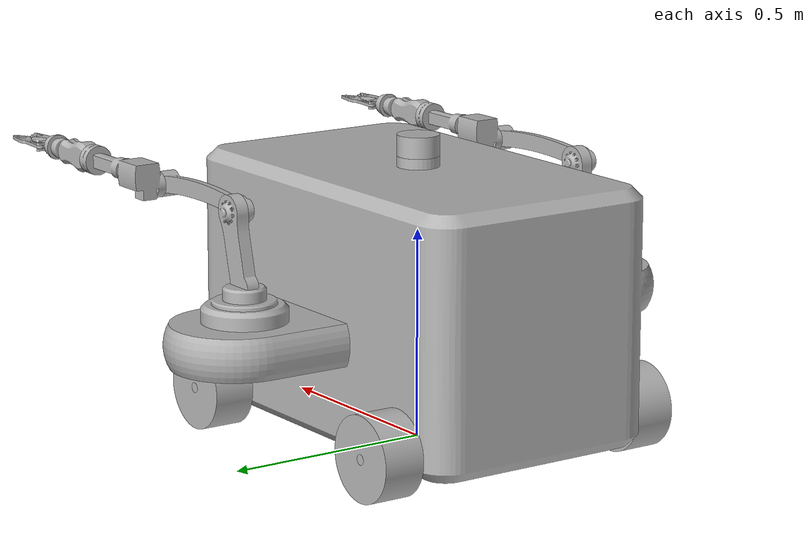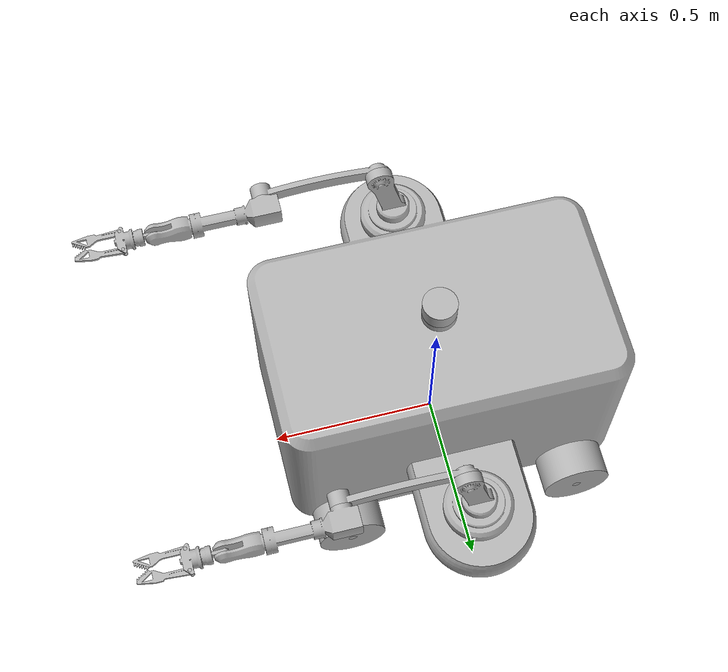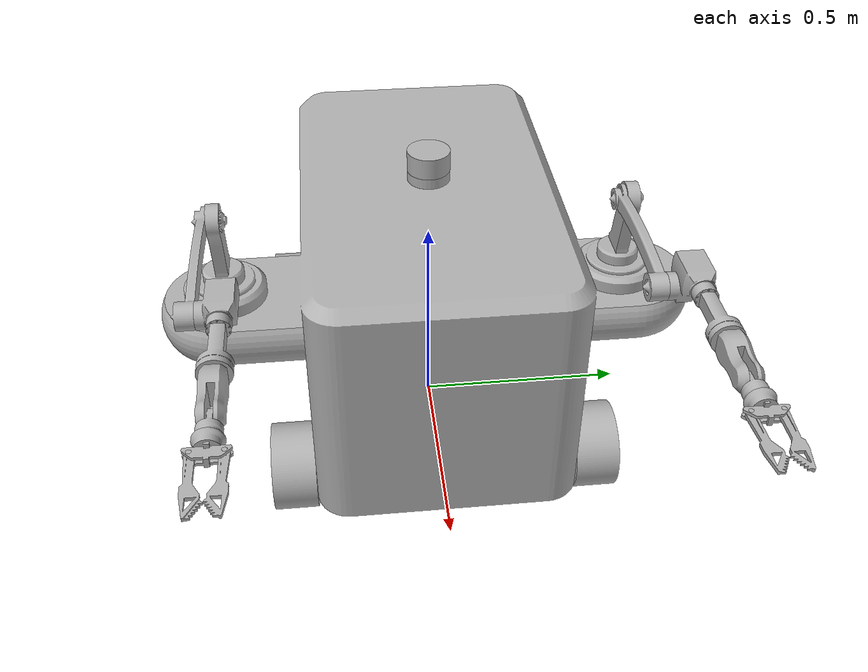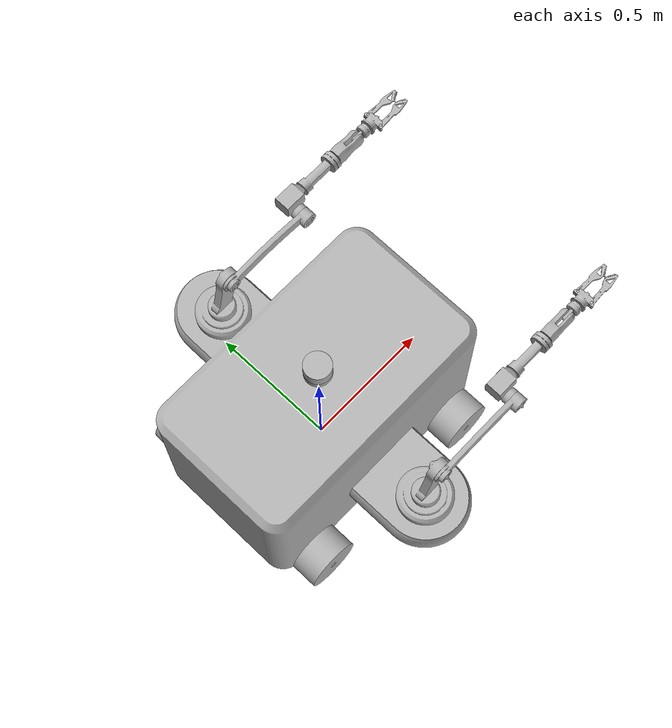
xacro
<?xml version="1.0" ?>
<robot name="mobile_manipulator" xmlns:xacro="http://www.ros.org/wiki/xacro">

<xacro:include filename="$(find mobile_manipulator_description)/urdf/materials.xacro" />
<xacro:include filename="$(find mobile_manipulator_description)/urdf/mobile_manipulator.trans" />
<xacro:include filename="$(find mobile_manipulator_description)/gazebo/mobile_manipulator_materials.gazebo" />
<xacro:include filename="$(find mobile_manipulator_description)/gazebo/mobile_manipulator_physics.gazebo" />
<xacro:include filename="$(find mobile_manipulator_description)/gazebo/mobile_manipulator_plugins.gazebo" />
<link name="dummy">
</link>
<link name="base_link">
  <inertial>
    <origin rpy="0 0 0" xyz="1.1880172534914988e-15 1.8117263115745358e-14 0.3472850110892992"/>
    <mass value="398.8636735465949"/>
    <inertia ixx="27.323391" ixy="-0.0" ixz="0.0" iyy="42.291122" iyz="0.0" izz="47.037275"/>
  </inertial>
  <visual>
    <origin rpy="0 0 0" xyz="0 0 0"/>
    <geometry>
      <mesh filename="package://mobile_manipulator_description/meshes/base_link.stl" scale="0.001 0.001 0.001"/>
    </geometry>
    <material name="silver_default"/>
  </visual>
  <collision>
    <origin rpy="0 0 0" xyz="0 0 0"/>
    <geometry>
      <mesh filename="package://mobile_manipulator_description/meshes/base_link.stl" scale="0.001 0.001 0.001"/>
    </geometry>
  </collision>
</link>

<link name="wheel_fl_1">
  <inertial>
    <origin rpy="0 0 0" xyz="-2.070565940925917e-14 0.0 1.9886869928598117e-14"/>
    <mass value="2.8760298995910287"/>
    <inertia ixx="0.009699" ixy="-0.0" ixz="0.0" iyy="0.014605" iyz="-0.0" izz="0.009699"/>
  </inertial>
  <visual>
    <origin rpy="0 0 0" xyz="-0.35 -0.35 -0.1"/>
    <geometry>
      <mesh filename="package://mobile_manipulator_description/meshes/wheel_fl_1.stl" scale="0.001 0.001 0.001"/>
    </geometry>
    <material name="silver_default"/>
  </visual>
  <collision>
    <origin rpy="0 0 0" xyz="-0.35 -0.35 -0.1"/>
    <geometry>
      <mesh filename="package://mobile_manipulator_description/meshes/wheel_fl_1.stl" scale="0.001 0.001 0.001"/>
    </geometry>
  </collision>
</link>

<link name="wheel_fr_1">
  <inertial>
    <origin rpy="0 0 0" xyz="-2.070565940925917e-14 1.6653345369377348e-15 1.990074771640593e-14"/>
    <mass value="2.8760298995910287"/>
    <inertia ixx="0.009699" ixy="-0.0" ixz="0.0" iyy="0.014605" iyz="-0.0" izz="0.009699"/>
  </inertial>
  <visual>
    <origin rpy="0 0 0" xyz="-0.35 0.35 -0.1"/>
    <geometry>
      <mesh filename="package://mobile_manipulator_description/meshes/wheel_fr_1.stl" scale="0.001 0.001 0.001"/>
    </geometry>
    <material name="silver_default"/>
  </visual>
  <collision>
    <origin rpy="0 0 0" xyz="-0.35 0.35 -0.1"/>
    <geometry>
      <mesh filename="package://mobile_manipulator_description/meshes/wheel_fr_1.stl" scale="0.001 0.001 0.001"/>
    </geometry>
  </collision>
</link>

<link name="wheel_br_1">
  <inertial>
    <origin rpy="0 0 0" xyz="-2.0761170560490427e-14 1.6653345369377348e-15 1.9886869928598117e-14"/>
    <mass value="2.8760298995910287"/>
    <inertia ixx="0.009699" ixy="0.0" ixz="-0.0" iyy="0.014605" iyz="-0.0" izz="0.009699"/>
  </inertial>
  <visual>
    <origin rpy="0 0 0" xyz="0.35 0.35 -0.1"/>
    <geometry>
      <mesh filename="package://mobile_manipulator_description/meshes/wheel_br_1.stl" scale="0.001 0.001 0.001"/>
    </geometry>
    <material name="silver_default"/>
  </visual>
  <collision>
    <origin rpy="0 0 0" xyz="0.35 0.35 -0.1"/>
    <geometry>
      <mesh filename="package://mobile_manipulator_description/meshes/wheel_br_1.stl" scale="0.001 0.001 0.001"/>
    </geometry>
  </collision>
</link>

<link name="lidar_1">
  <inertial>
    <origin rpy="0 0 0" xyz="5.790023100122031e-18 2.2101892748399837e-14 0.02499999999999991"/>
    <mass value="3.082687791334983"/>
    <inertia ixx="0.002569" ixy="-0.0" ixz="0.0" iyy="0.002569" iyz="0.0" izz="0.003853"/>
  </inertial>
  <visual>
    <origin rpy="0 0 0" xyz="-0.0 -0.0 -0.675"/>
    <geometry>
      <mesh filename="package://mobile_manipulator_description/meshes/lidar_1.stl" scale="0.001 0.001 0.001"/>
    </geometry>
    <material name="silver_default"/>
  </visual>
  <collision>
    <origin rpy="0 0 0" xyz="-0.0 -0.0 -0.675"/>
    <geometry>
      <mesh filename="package://mobile_manipulator_description/meshes/lidar_1.stl" scale="0.001 0.001 0.001"/>
    </geometry>
  </collision>
</link>

<link name="arm_base_right_1">
  <inertial>
    <origin rpy="0 0 0" xyz="-1.1685831912934098e-14 0.0 0.0228217856471592"/>
    <mass value="3.7908869701372376"/>
    <inertia ixx="0.009461" ixy="0.0" ixz="0.0" iyy="0.009461" iyz="0.0" izz="0.017508"/>
  </inertial>
  <visual>
    <origin rpy="0 0 0" xyz="-0.0 0.5 -0.35"/>
    <geometry>
      <mesh filename="package://mobile_manipulator_description/meshes/arm_base_right_1.stl" scale="0.001 0.001 0.001"/>
    </geometry>
    <material name="silver_default"/>
  </visual>
  <collision>
    <origin rpy="0 0 0" xyz="-0.0 0.5 -0.35"/>
    <geometry>
      <mesh filename="package://mobile_manipulator_description/meshes/arm_base_right_1.stl" scale="0.001 0.001 0.001"/>
    </geometry>
  </collision>
</link>

<link name="arm_base_left_1">
  <inertial>
    <origin rpy="0 0 0" xyz="-1.1682031322150814e-14 -7.771561172376096e-16 0.022821785647177406"/>
    <mass value="3.7908869701372376"/>
    <inertia ixx="0.009461" ixy="0.0" ixz="0.0" iyy="0.009461" iyz="-0.0" izz="0.017508"/>
  </inertial>
  <visual>
    <origin rpy="0 0 0" xyz="0.0 -0.475 -0.35"/>
    <geometry>
      <mesh filename="package://mobile_manipulator_description/meshes/arm_base_left_1.stl" scale="0.001 0.001 0.001"/>
    </geometry>
    <material name="silver_default"/>
  </visual>
  <collision>
    <origin rpy="0 0 0" xyz="0.0 -0.475 -0.35"/>
    <geometry>
      <mesh filename="package://mobile_manipulator_description/meshes/arm_base_left_1.stl" scale="0.001 0.001 0.001"/>
    </geometry>
  </collision>
</link>

<link name="shoulder_right_1">
  <inertial>
    <origin rpy="0 0 0" xyz="0.009876831808453819 0.00024257366111479772 0.05892555620869172"/>
    <mass value="3.1247497467720398"/>
    <inertia ixx="0.014842" ixy="-2.6e-05" ixz="-0.003268" iyy="0.016057" iyz="-0.000102" izz="0.003681"/>
  </inertial>
  <visual>
    <origin rpy="0 0 0" xyz="-0.0 0.5 -0.4"/>
    <geometry>
      <mesh filename="package://mobile_manipulator_description/meshes/shoulder_right_1.stl" scale="0.001 0.001 0.001"/>
    </geometry>
    <material name="silver_default"/>
  </visual>
  <collision>
    <origin rpy="0 0 0" xyz="-0.0 0.5 -0.4"/>
    <geometry>
      <mesh filename="package://mobile_manipulator_description/meshes/shoulder_right_1.stl" scale="0.001 0.001 0.001"/>
    </geometry>
  </collision>
</link>

<link name="shoulder_left_1">
  <inertial>
    <origin rpy="0 0 0" xyz="0.009876831808453845 0.00024257366111080092 0.05892555620870993"/>
    <mass value="3.12474974677204"/>
    <inertia ixx="0.014842" ixy="-2.6e-05" ixz="-0.003268" iyy="0.016057" iyz="-0.000102" izz="0.003681"/>
  </inertial>
  <visual>
    <origin rpy="0 0 0" xyz="-0.0 -0.475 -0.4"/>
    <geometry>
      <mesh filename="package://mobile_manipulator_description/meshes/shoulder_left_1.stl" scale="0.001 0.001 0.001"/>
    </geometry>
    <material name="silver_default"/>
  </visual>
  <collision>
    <origin rpy="0 0 0" xyz="-0.0 -0.475 -0.4"/>
    <geometry>
      <mesh filename="package://mobile_manipulator_description/meshes/shoulder_left_1.stl" scale="0.001 0.001 0.001"/>
    </geometry>
  </collision>
</link>

<link name="wheel_bl_1">
  <inertial>
    <origin rpy="0 0 0" xyz="-2.0761170560490427e-14 0.0 1.9886869928598117e-14"/>
    <mass value="2.8760298995910287"/>
    <inertia ixx="0.009699" ixy="0.0" ixz="-0.0" iyy="0.014605" iyz="-0.0" izz="0.009699"/>
  </inertial>
  <visual>
    <origin rpy="0 0 0" xyz="0.35 -0.35 -0.1"/>
    <geometry>
      <mesh filename="package://mobile_manipulator_description/meshes/wheel_bl_1.stl" scale="0.001 0.001 0.001"/>
    </geometry>
    <material name="silver_default"/>
  </visual>
  <collision>
    <origin rpy="0 0 0" xyz="0.35 -0.35 -0.1"/>
    <geometry>
      <mesh filename="package://mobile_manipulator_description/meshes/wheel_bl_1.stl" scale="0.001 0.001 0.001"/>
    </geometry>
  </collision>
</link>

<link name="arm_right_1">
  <inertial>
    <origin rpy="0 0 0" xyz="0.19413326329620814 -0.012606374294724554 0.005895047633385331"/>
    <mass value="1.1196019663077494"/>
    <inertia ixx="0.00032" ixy="0.000436" ixz="0.000122" iyy="0.019542" iyz="-1.8e-05" izz="0.019409"/>
  </inertial>
  <visual>
    <origin rpy="0 0 0" xyz="-0.04388 0.515 -0.593021"/>
    <geometry>
      <mesh filename="package://mobile_manipulator_description/meshes/arm_right_1.stl" scale="0.001 0.001 0.001"/>
    </geometry>
    <material name="silver_default"/>
  </visual>
  <collision>
    <origin rpy="0 0 0" xyz="-0.04388 0.515 -0.593021"/>
    <geometry>
      <mesh filename="package://mobile_manipulator_description/meshes/arm_right_1.stl" scale="0.001 0.001 0.001"/>
    </geometry>
  </collision>
</link>

<link name="arm_left_1">
  <inertial>
    <origin rpy="0 0 0" xyz="0.19413326329620828 -0.012606374294733103 0.005895047633403427"/>
    <mass value="1.1196019663077494"/>
    <inertia ixx="0.00032" ixy="0.000436" ixz="0.000122" iyy="0.019542" iyz="-1.8e-05" izz="0.019409"/>
  </inertial>
  <visual>
    <origin rpy="0 0 0" xyz="-0.04388 -0.46 -0.593021"/>
    <geometry>
      <mesh filename="package://mobile_manipulator_description/meshes/arm_left_1.stl" scale="0.001 0.001 0.001"/>
    </geometry>
    <material name="silver_default"/>
  </visual>
  <collision>
    <origin rpy="0 0 0" xyz="-0.04388 -0.46 -0.593021"/>
    <geometry>
      <mesh filename="package://mobile_manipulator_description/meshes/arm_left_1.stl" scale="0.001 0.001 0.001"/>
    </geometry>
  </collision>
</link>

<link name="forearm_right_1">
  <inertial>
    <origin rpy="0 0 0" xyz="0.06010304679536271 0.0504534714766981 0.02502167030649416"/>
    <mass value="1.9557341461233821"/>
    <inertia ixx="0.001552" ixy="-0.000534" ixz="-0.000582" iyy="0.013654" iyz="-0.00025" izz="0.013657"/>
  </inertial>
  <visual>
    <origin rpy="0 0 0" xyz="-0.39388 0.515 -0.593021"/>
    <geometry>
      <mesh filename="package://mobile_manipulator_description/meshes/forearm_right_1.stl" scale="0.001 0.001 0.001"/>
    </geometry>
    <material name="silver_default"/>
  </visual>
  <collision>
    <origin rpy="0 0 0" xyz="-0.39388 0.515 -0.593021"/>
    <geometry>
      <mesh filename="package://mobile_manipulator_description/meshes/forearm_right_1.stl" scale="0.001 0.001 0.001"/>
    </geometry>
  </collision>
</link>

<link name="forearm_left_1">
  <inertial>
    <origin rpy="0 0 0" xyz="0.060103046795362824 0.05045347147668883 0.025021670306512256"/>
    <mass value="1.9557341461233821"/>
    <inertia ixx="0.001552" ixy="-0.000534" ixz="-0.000582" iyy="0.013654" iyz="-0.00025" izz="0.013657"/>
  </inertial>
  <visual>
    <origin rpy="0 0 0" xyz="-0.39388 -0.46 -0.593021"/>
    <geometry>
      <mesh filename="package://mobile_manipulator_description/meshes/forearm_left_1.stl" scale="0.001 0.001 0.001"/>
    </geometry>
    <material name="silver_default"/>
  </visual>
  <collision>
    <origin rpy="0 0 0" xyz="-0.39388 -0.46 -0.593021"/>
    <geometry>
      <mesh filename="package://mobile_manipulator_description/meshes/forearm_left_1.stl" scale="0.001 0.001 0.001"/>
    </geometry>
  </collision>
</link>

<link name="wrist_right_1">
  <inertial>
    <origin rpy="0 0 0" xyz="0.054203077066210414 2.7755575615628914e-16 3.7502179894843835e-07"/>
    <mass value="0.7930209099256357"/>
    <inertia ixx="0.000384" ixy="-0.0" ixz="-0.0" iyy="0.001295" iyz="-0.0" izz="0.001254"/>
  </inertial>
  <visual>
    <origin rpy="0 0 0" xyz="-0.61488 0.46 -0.623021"/>
    <geometry>
      <mesh filename="package://mobile_manipulator_description/meshes/wrist_right_1.stl" scale="0.001 0.001 0.001"/>
    </geometry>
    <material name="silver_default"/>
  </visual>
  <collision>
    <origin rpy="0 0 0" xyz="-0.61488 0.46 -0.623021"/>
    <geometry>
      <mesh filename="package://mobile_manipulator_description/meshes/wrist_right_1.stl" scale="0.001 0.001 0.001"/>
    </geometry>
  </collision>
</link>

<link name="wrist_left_1">
  <inertial>
    <origin rpy="0 0 0" xyz="0.054203077066210636 -9.103828801926284e-15 3.7502181804427437e-07"/>
    <mass value="0.7930209099256357"/>
    <inertia ixx="0.000384" ixy="-0.0" ixz="0.0" iyy="0.001295" iyz="0.0" izz="0.001254"/>
  </inertial>
  <visual>
    <origin rpy="0 0 0" xyz="-0.61488 -0.515 -0.623021"/>
    <geometry>
      <mesh filename="package://mobile_manipulator_description/meshes/wrist_left_1.stl" scale="0.001 0.001 0.001"/>
    </geometry>
    <material name="silver_default"/>
  </visual>
  <collision>
    <origin rpy="0 0 0" xyz="-0.61488 -0.515 -0.623021"/>
    <geometry>
      <mesh filename="package://mobile_manipulator_description/meshes/wrist_left_1.stl" scale="0.001 0.001 0.001"/>
    </geometry>
  </collision>
</link>

<link name="palm_right_1">
  <inertial>
    <origin rpy="0 0 0" xyz="0.04219292467141289 6.977751709769109e-14 3.7502179894843835e-07"/>
    <mass value="0.1617998720819448"/>
    <inertia ixx="3.8e-05" ixy="-0.0" ixz="-0.0" iyy="6.4e-05" iyz="0.0" izz="6.4e-05"/>
  </inertial>
  <visual>
    <origin rpy="0 0 0" xyz="-0.71988 0.46 -0.623021"/>
    <geometry>
      <mesh filename="package://mobile_manipulator_description/meshes/palm_right_1.stl" scale="0.001 0.001 0.001"/>
    </geometry>
    <material name="silver_default"/>
  </visual>
  <collision>
    <origin rpy="0 0 0" xyz="-0.71988 0.46 -0.623021"/>
    <geometry>
      <mesh filename="package://mobile_manipulator_description/meshes/palm_right_1.stl" scale="0.001 0.001 0.001"/>
    </geometry>
  </collision>
</link>

<link name="palm_left_1">
  <inertial>
    <origin rpy="0 0 0" xyz="0.042192924671413 6.039613253960852e-14 3.7502181715609595e-07"/>
    <mass value="0.1617998720819448"/>
    <inertia ixx="3.8e-05" ixy="-0.0" ixz="0.0" iyy="6.4e-05" iyz="0.0" izz="6.4e-05"/>
  </inertial>
  <visual>
    <origin rpy="0 0 0" xyz="-0.71988 -0.515 -0.623021"/>
    <geometry>
      <mesh filename="package://mobile_manipulator_description/meshes/palm_left_1.stl" scale="0.001 0.001 0.001"/>
    </geometry>
    <material name="silver_default"/>
  </visual>
  <collision>
    <origin rpy="0 0 0" xyz="-0.71988 -0.515 -0.623021"/>
    <geometry>
      <mesh filename="package://mobile_manipulator_description/meshes/palm_left_1.stl" scale="0.001 0.001 0.001"/>
    </geometry>
  </collision>
</link>

<link name="knuckle_right_1">
  <inertial>
    <origin rpy="0 0 0" xyz="0.014791665047523606 2.8555338740798852e-06 3.7502179894843835e-07"/>
    <mass value="0.49387627632174347"/>
    <inertia ixx="0.000186" ixy="-0.0" ixz="-0.0" iyy="0.000145" iyz="0.0" izz="0.000163"/>
  </inertial>
  <visual>
    <origin rpy="0 0 0" xyz="-0.78388 0.46 -0.623021"/>
    <geometry>
      <mesh filename="package://mobile_manipulator_description/meshes/knuckle_right_1.stl" scale="0.001 0.001 0.001"/>
    </geometry>
    <material name="silver_default"/>
  </visual>
  <collision>
    <origin rpy="0 0 0" xyz="-0.78388 0.46 -0.623021"/>
    <geometry>
      <mesh filename="package://mobile_manipulator_description/meshes/knuckle_right_1.stl" scale="0.001 0.001 0.001"/>
    </geometry>
  </collision>
</link>

<link name="knuckle_left_1">
  <inertial>
    <origin rpy="0 0 0" xyz="0.02516547946758041 1.3028412048865512e-05 3.7502181726711825e-07"/>
    <mass value="0.31471677202513093"/>
    <inertia ixx="0.000131" ixy="-0.0" ixz="0.0" iyy="0.000106" iyz="0.0" izz="0.000164"/>
  </inertial>
  <visual>
    <origin rpy="0 0 0" xyz="-0.78388 -0.515 -0.623021"/>
    <geometry>
      <mesh filename="package://mobile_manipulator_description/meshes/knuckle_left_1.stl" scale="0.001 0.001 0.001"/>
    </geometry>
    <material name="silver_default"/>
  </visual>
  <collision>
    <origin rpy="0 0 0" xyz="-0.78388 -0.515 -0.623021"/>
    <geometry>
      <mesh filename="package://mobile_manipulator_description/meshes/knuckle_left_1.stl" scale="0.001 0.001 0.001"/>
    </geometry>
  </collision>
</link>

<link name="finger_right_1_1">
  <inertial>
    <origin rpy="0 0 0" xyz="0.0667816014736462 0.003796343581673578 -7.734064779374439e-05"/>
    <mass value="0.058672001092002074"/>
    <inertia ixx="4e-06" ixy="-6e-06" ixz="0.0" iyy="0.000102" iyz="0.0" izz="0.000105"/>
  </inertial>
  <visual>
    <origin rpy="0 0 0" xyz="-0.81888 0.49 -0.623021"/>
    <geometry>
      <mesh filename="package://mobile_manipulator_description/meshes/finger_right_1_1.stl" scale="0.001 0.001 0.001"/>
    </geometry>
    <material name="silver_default"/>
  </visual>
  <collision>
    <origin rpy="0 0 0" xyz="-0.81888 0.49 -0.623021"/>
    <geometry>
      <mesh filename="package://mobile_manipulator_description/meshes/finger_right_1_1.stl" scale="0.001 0.001 0.001"/>
    </geometry>
  </collision>
</link>

<link name="finger_right_2_1">
  <inertial>
    <origin rpy="0 0 0" xyz="0.0667816014736462 -0.0037963435816733004 7.809069139164126e-05"/>
    <mass value="0.058672001092002074"/>
    <inertia ixx="4e-06" ixy="6e-06" ixz="-0.0" iyy="0.000102" iyz="0.0" izz="0.000105"/>
  </inertial>
  <visual>
    <origin rpy="0 0 0" xyz="-0.81888 0.43 -0.623021"/>
    <geometry>
      <mesh filename="package://mobile_manipulator_description/meshes/finger_right_2_1.stl" scale="0.001 0.001 0.001"/>
    </geometry>
    <material name="silver_default"/>
  </visual>
  <collision>
    <origin rpy="0 0 0" xyz="-0.81888 0.43 -0.623021"/>
    <geometry>
      <mesh filename="package://mobile_manipulator_description/meshes/finger_right_2_1.stl" scale="0.001 0.001 0.001"/>
    </geometry>
  </collision>
</link>

<link name="finger_left_1_1">
  <inertial>
    <origin rpy="0 0 0" xyz="0.06678160147364653 -0.003796343581682571 7.80906914097379e-05"/>
    <mass value="0.058672001092002074"/>
    <inertia ixx="4e-06" ixy="6e-06" ixz="-0.0" iyy="0.000102" iyz="0.0" izz="0.000105"/>
  </inertial>
  <visual>
    <origin rpy="0 0 0" xyz="-0.81888 -0.545 -0.623021"/>
    <geometry>
      <mesh filename="package://mobile_manipulator_description/meshes/finger_left_1_1.stl" scale="0.001 0.001 0.001"/>
    </geometry>
    <material name="silver_default"/>
  </visual>
  <collision>
    <origin rpy="0 0 0" xyz="-0.81888 -0.545 -0.623021"/>
    <geometry>
      <mesh filename="package://mobile_manipulator_description/meshes/finger_left_1_1.stl" scale="0.001 0.001 0.001"/>
    </geometry>
  </collision>
</link>

<link name="finger_left_2_1">
  <inertial>
    <origin rpy="0 0 0" xyz="0.06678160147364653 0.003796343581664363 -7.734064777542571e-05"/>
    <mass value="0.058672001092002074"/>
    <inertia ixx="4e-06" ixy="-6e-06" ixz="0.0" iyy="0.000102" iyz="0.0" izz="0.000105"/>
  </inertial>
  <visual>
    <origin rpy="0 0 0" xyz="-0.81888 -0.485 -0.623021"/>
    <geometry>
      <mesh filename="package://mobile_manipulator_description/meshes/finger_left_2_1.stl" scale="0.001 0.001 0.001"/>
    </geometry>
    <material name="silver_default"/>
  </visual>
  <collision>
    <origin rpy="0 0 0" xyz="-0.81888 -0.485 -0.623021"/>
    <geometry>
      <mesh filename="package://mobile_manipulator_description/meshes/finger_left_2_1.stl" scale="0.001 0.001 0.001"/>
    </geometry>
  </collision>
</link>

<joint name="dummy_joint" type="fixed">
  <parent link="dummy"/>
  <child link="base_link"/>
</joint>

<joint name="motor_fl" type="continuous">
  <origin rpy="0 0 0" xyz="0.35 0.35 0.1"/>
  <parent link="base_link"/>
  <child link="wheel_fl_1"/>
  <axis xyz="0.0 1.0 -0.0"/>
</joint>

<joint name="motor_fr" type="continuous">
  <origin rpy="0 0 0" xyz="0.35 -0.35 0.1"/>
  <parent link="base_link"/>
  <child link="wheel_fr_1"/>
  <axis xyz="0.0 1.0 -0.0"/>
</joint>

<joint name="motor_br" type="continuous">
  <origin rpy="0 0 0" xyz="-0.35 -0.35 0.1"/>
  <parent link="base_link"/>
  <child link="wheel_br_1"/>
  <axis xyz="0.0 1.0 -0.0"/>
</joint>

<joint name="lidar_joint" type="fixed">
  <origin rpy="0 0 0" xyz="0.0 0.0 0.675"/>
  <parent link="base_link"/>
  <child link="lidar_1"/>
</joint>

<joint name="arm_base_right_joint" type="fixed">
  <origin rpy="0 0 0" xyz="0.0 -0.5 0.35"/>
  <parent link="base_link"/>
  <child link="arm_base_right_1"/>
</joint>

<joint name="arm_base_left_joint" type="fixed">
  <origin rpy="0 0 0" xyz="0.0 0.475 0.35"/>
  <parent link="base_link"/>
  <child link="arm_base_left_1"/>
</joint>

<joint name="shoulder_right_joint" type="continuous">
  <origin rpy="0 0 0" xyz="0.0 0.0 0.05"/>
  <parent link="arm_base_right_1"/>
  <child link="shoulder_right_1"/>
  <axis xyz="0.0 0.0 1.0"/>
</joint>

<joint name="shoulder_left_joint" type="continuous">
  <origin rpy="0 0 0" xyz="0.0 0.0 0.05"/>
  <parent link="arm_base_left_1"/>
  <child link="shoulder_left_1"/>
  <axis xyz="0.0 -0.0 1.0"/>
</joint>

<joint name="motor_bl" type="continuous">
  <origin rpy="0 0 0" xyz="-0.35 0.35 0.1"/>
  <parent link="base_link"/>
  <child link="wheel_bl_1"/>
  <axis xyz="0.0 1.0 -0.0"/>
</joint>

<joint name="arm_right_joint" type="continuous">
  <origin rpy="0 0 0" xyz="0.04388 -0.015 0.193021"/>
  <parent link="shoulder_right_1"/>
  <child link="arm_right_1"/>
  <axis xyz="0.0 -1.0 0.0"/>
</joint>

<joint name="arm_left_joint" type="continuous">
  <origin rpy="0 0 0" xyz="0.04388 -0.015 0.193021"/>
  <parent link="shoulder_left_1"/>
  <child link="arm_left_1"/>
  <axis xyz="0.0 -1.0 -0.0"/>
</joint>

<joint name="forearm_right_joint" type="continuous">
  <origin rpy="0 0 0" xyz="0.35 0.0 0.0"/>
  <parent link="arm_right_1"/>
  <child link="forearm_right_1"/>
  <axis xyz="0.0 1.0 0.0"/>
</joint>

<joint name="forearm_left_joint" type="continuous">
  <origin rpy="0 0 0" xyz="0.35 0.0 0.0"/>
  <parent link="arm_left_1"/>
  <child link="forearm_left_1"/>
  <axis xyz="0.0 -1.0 -0.0"/>
</joint>

<joint name="wrist_right_joint" type="continuous">
  <origin rpy="0 0 0" xyz="0.221 0.055 0.03"/>
  <parent link="forearm_right_1"/>
  <child link="wrist_right_1"/>
  <axis xyz="-1.0 0.0 0.0"/>
</joint>

<joint name="wrist_left_joint" type="continuous">
  <origin rpy="0 0 0" xyz="0.221 0.055 0.03"/>
  <parent link="forearm_left_1"/>
  <child link="wrist_left_1"/>
  <axis xyz="-1.0 0.0 0.0"/>
</joint>

<joint name="palm_right_joint" type="continuous">
  <origin rpy="0 0 0" xyz="0.105 0.0 0.0"/>
  <parent link="wrist_right_1"/>
  <child link="palm_right_1"/>
  <axis xyz="0.0 -1.0 0.0"/>
</joint>

<joint name="palm_left_joint" type="continuous">
  <origin rpy="0 0 0" xyz="0.105 0.0 0.0"/>
  <parent link="wrist_left_1"/>
  <child link="palm_left_1"/>
  <axis xyz="0.0 1.0 0.0"/>
</joint>

<joint name="knuckle_right_joint" type="continuous">
  <origin rpy="0 0 0" xyz="0.064 0.0 0.0"/>
  <parent link="palm_right_1"/>
  <child link="knuckle_right_1"/>
  <axis xyz="1.0 0.0 0.0"/>
</joint>

<joint name="knuckle_left_joint" type="continuous">
  <origin rpy="0 0 0" xyz="0.064 0.0 0.0"/>
  <parent link="palm_left_1"/>
  <child link="knuckle_left_1"/>
  <axis xyz="-1.0 0.0 0.0"/>
</joint>

<joint name="finger_right_1_joint" type="continuous">
  <origin rpy="0 0 0" xyz="0.035 -0.03 0.0"/>
  <parent link="knuckle_right_1"/>
  <child link="finger_right_1_1"/>
  <axis xyz="0.0 0.0 1.0"/>
</joint>

<joint name="finger_right_2_joint" type="continuous">
  <origin rpy="0 0 0" xyz="0.035 0.03 0.0"/>
  <parent link="knuckle_right_1"/>
  <child link="finger_right_2_1"/>
  <axis xyz="0.0 0.0 1.0"/>
</joint>

<joint name="finger_left_1_joint" type="continuous">
  <origin rpy="0 0 0" xyz="0.035 0.03 0.0"/>
  <parent link="knuckle_left_1"/>
  <child link="finger_left_1_1"/>
  <axis xyz="0.0 -0.0 1.0"/>
</joint>

<joint name="finger_left_2_joint" type="continuous">
  <origin rpy="0 0 0" xyz="0.035 -0.03 0.0"/>
  <parent link="knuckle_left_1"/>
  <child link="finger_left_2_1"/>
  <axis xyz="0.0 0.0 1.0"/>
</joint>

</robot>

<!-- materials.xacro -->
<robot name="mobile_manipulator" xmlns:xacro="http://www.ros.org/wiki/xacro" >

<material name="silver_default">
  <color rgba="0.700 0.700 0.700 1.000"/>
</material>

</robot>

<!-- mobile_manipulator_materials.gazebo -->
<robot name="mobile_manipulator" xmlns:xacro="http://www.ros.org/wiki/xacro" >

<xacro:property name="body_color" value="Gazebo/Yellow" />
<xacro:property name="wheel_color" value="Gazebo/Black" />
<xacro:property name="arm_color" value="Gazebo/Silver" />
<xacro:property name="sensor_color" value="Gazebo/Red" />

<gazebo reference="base_link">
  <material>${body_color}</material>
</gazebo>

<gazebo reference="wheel_fl_1">
  <material>${wheel_color}</material>
</gazebo>

<gazebo reference="wheel_fr_1">
  <material>${wheel_color}</material>
</gazebo>

<gazebo reference="wheel_br_1">
  <material>${wheel_color}</material>
</gazebo>

<gazebo reference="lidar_1">
  <material>${sensor_color}</material>
</gazebo>

<gazebo reference="arm_base_right_1">
  <material>${arm_color}</material>
</gazebo>

<gazebo reference="arm_base_left_1">
  <material>${arm_color}</material>
</gazebo>

<gazebo reference="shoulder_right_1">
  <material>${arm_color}</material>
</gazebo>

<gazebo reference="shoulder_left_1">
  <material>${arm_color}</material>
</gazebo>

<gazebo reference="wheel_bl_1">
  <material>${wheel_color}</material>
</gazebo>

<gazebo reference="arm_right_1">
  <material>${arm_color}</material>
</gazebo>

<gazebo reference="arm_left_1">
  <material>${arm_color}</material>
</gazebo>

<gazebo reference="forearm_right_1">
  <material>${arm_color}</material>
</gazebo>

<gazebo reference="forearm_left_1">
  <material>${arm_color}</material>
</gazebo>

<gazebo reference="wrist_right_1">
  <material>${arm_color}</material>
</gazebo>

<gazebo reference="wrist_left_1">
  <material>${arm_color}</material>
</gazebo>

<gazebo reference="palm_right_1">
  <material>${arm_color}</material>
</gazebo>

<gazebo reference="palm_left_1">
  <material>${arm_color}</material>
</gazebo>

<gazebo reference="knuckle_right_1">
  <material>${arm_color}</material>
</gazebo>

<gazebo reference="knuckle_left_1">
  <material>${arm_color}</material>
</gazebo>

<gazebo reference="finger_right_1_1">
  <material>${arm_color}</material>
</gazebo>

<gazebo reference="finger_right_2_1">
  <material>${arm_color}</material>
</gazebo>

<gazebo reference="finger_left_1_1">
  <material>${arm_color}</material>
</gazebo>

<gazebo reference="finger_left_2_1">
  <material>${arm_color}</material>
</gazebo>

</robot>
